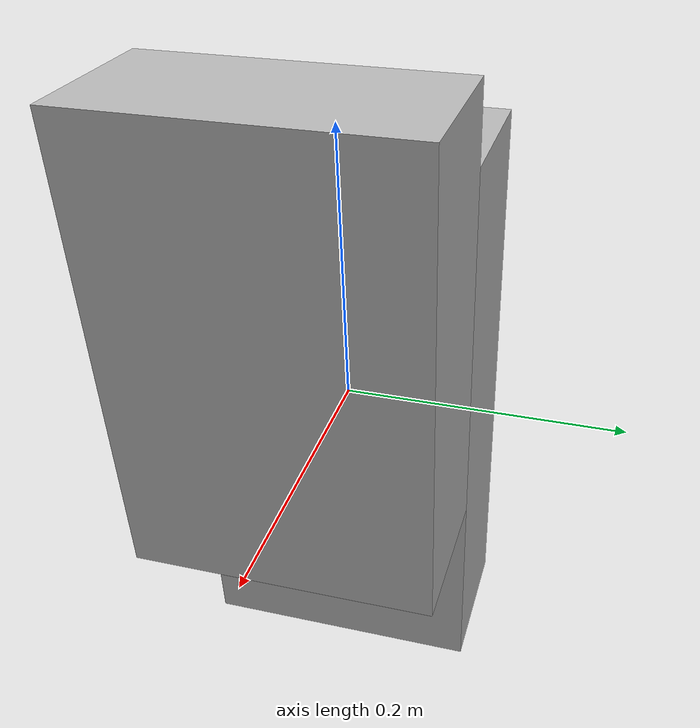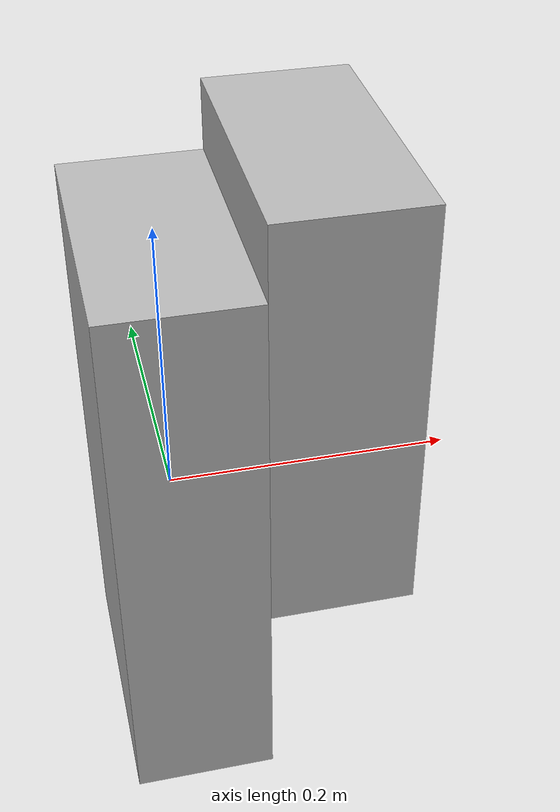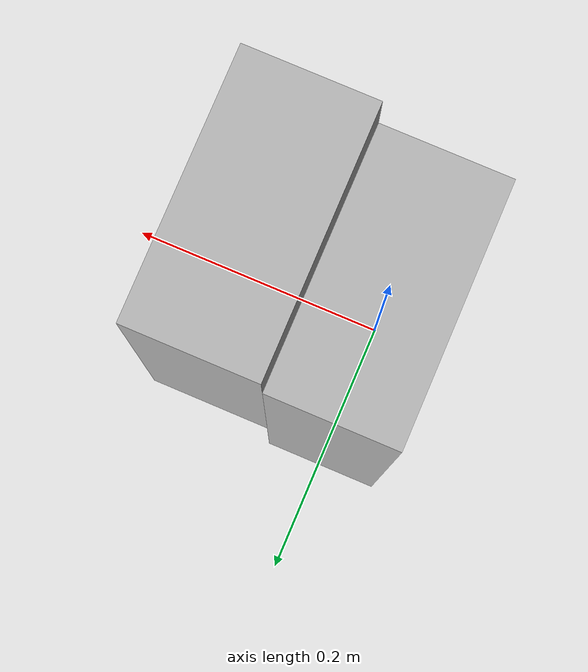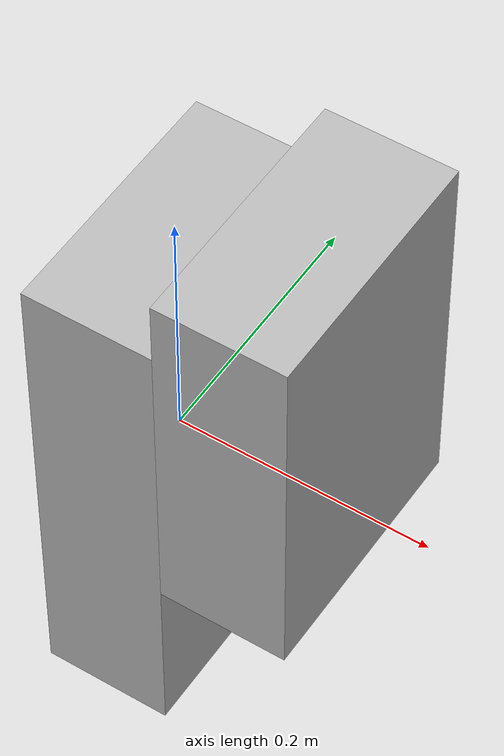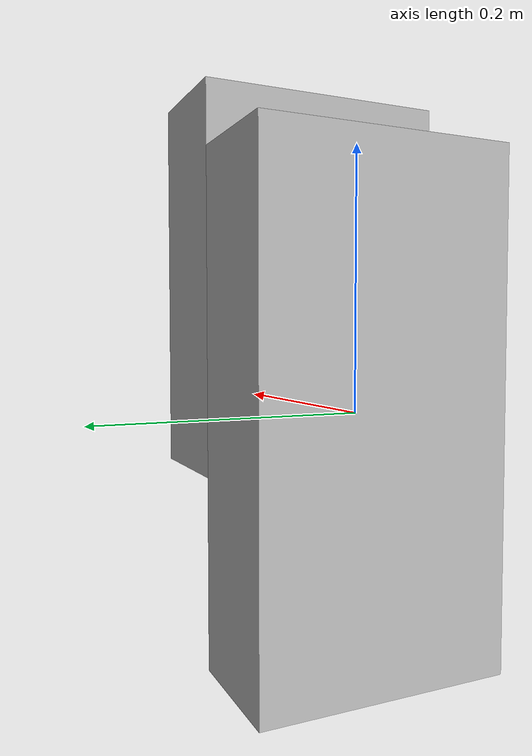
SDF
<?xml version='1.0' encoding='utf-8'?>
<sdf version="1.7">
  <model name="joint_revolute_two_joints_two_links">
    <link name="link_1">
      <visual name="link_1_visual">
        <geometry>
          <box>
            <size>0.1 0.2 0.4</size>
          </box>
        </geometry>
      </visual>
      <collision name="link_1_collision">
        <geometry>
          <box>
            <size>0.1 0.2 0.4</size>
          </box>
        </geometry>
      </collision>
      <inertial>
        <mass>12.3</mass>
        <inertia>
          <ixx>0.205</ixx>
          <ixy>0</ixy>
          <ixz>0</ixz>
          <iyy>0.17425</iyy>
          <iyz>0</iyz>
          <izz>0.05125</izz>
        </inertia>
      </inertial>
    </link>
    <link name="link_2">
      <pose>0.1 0 0.1 0 0 0</pose>
      <visual name="link_2_visual">
        <geometry>
          <box>
            <size>0.1 0.2 0.3</size>
          </box>
        </geometry>
      </visual>
      <collision name="link_2_collision">
        <geometry>
          <box>
            <size>0.1 0.2 0.3</size>
          </box>
        </geometry>
      </collision>
      <inertial>
        <mass>1.23</mass>
        <inertia>
          <ixx>0.013325</ixx>
          <ixy>0</ixy>
          <ixz>0</ixz>
          <iyy>0.01025</iyy>
          <iyz>0</iyz>
          <izz>0.005125</izz>
        </inertia>
      </inertial>
    </link>

    <joint name="joint_revolute_1" type="revolute">
      <parent>link_1</parent>
      <child>link_2</child>
      <axis>
        <xyz>1 0 0</xyz>
        <limit>
          <lower>-1.5</lower>
          <upper>1.5</upper>
        </limit>
      </axis>
    </joint>
    <joint name="joint_revolute_2" type="revolute">
      <pose>0 0.1 0 0 0 0</pose>
      <parent>link_1</parent>
      <child>link_2</child>
      <axis>
        <xyz>1 0 0</xyz>
        <limit>
          <lower>-1.5</lower>
          <upper>1.5</upper>
        </limit>
      </axis>
    </joint>
  </model>
</sdf>
